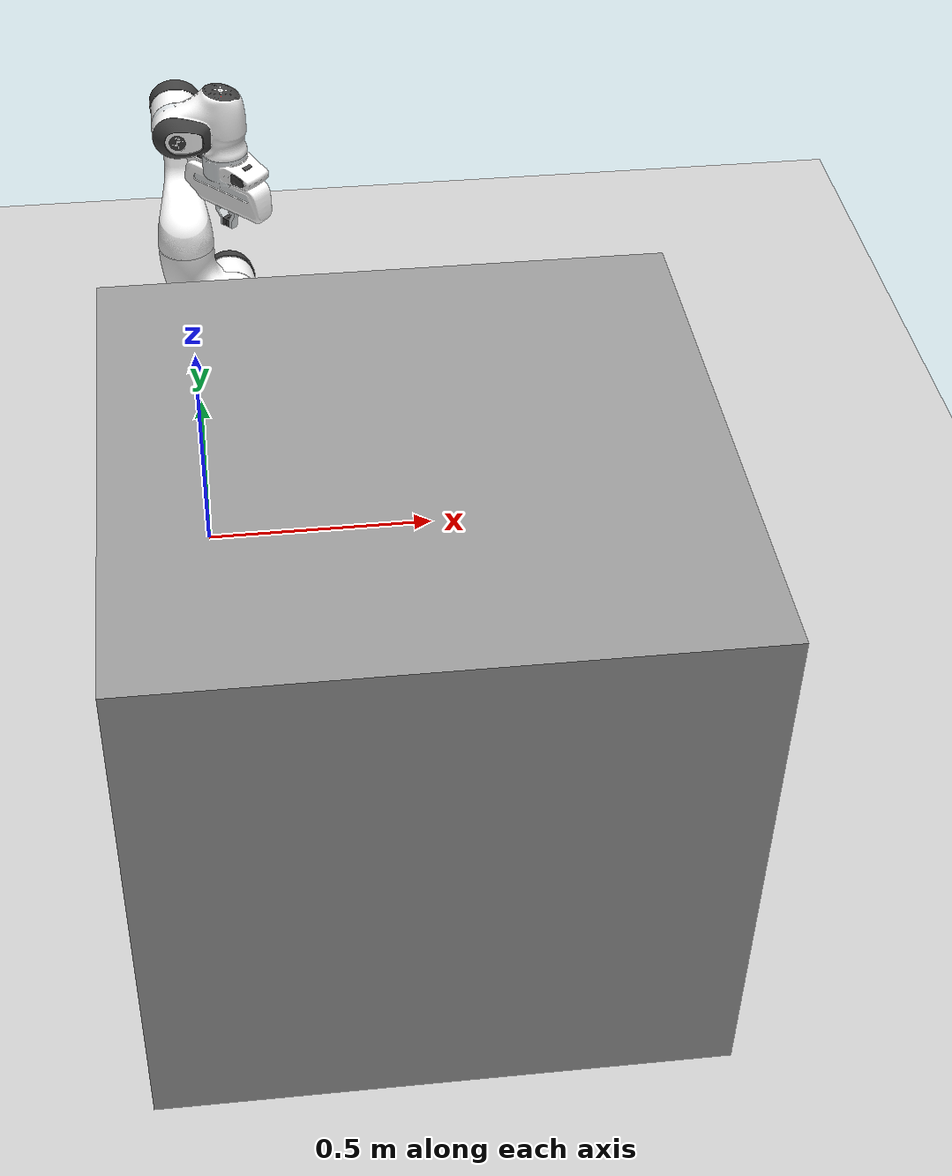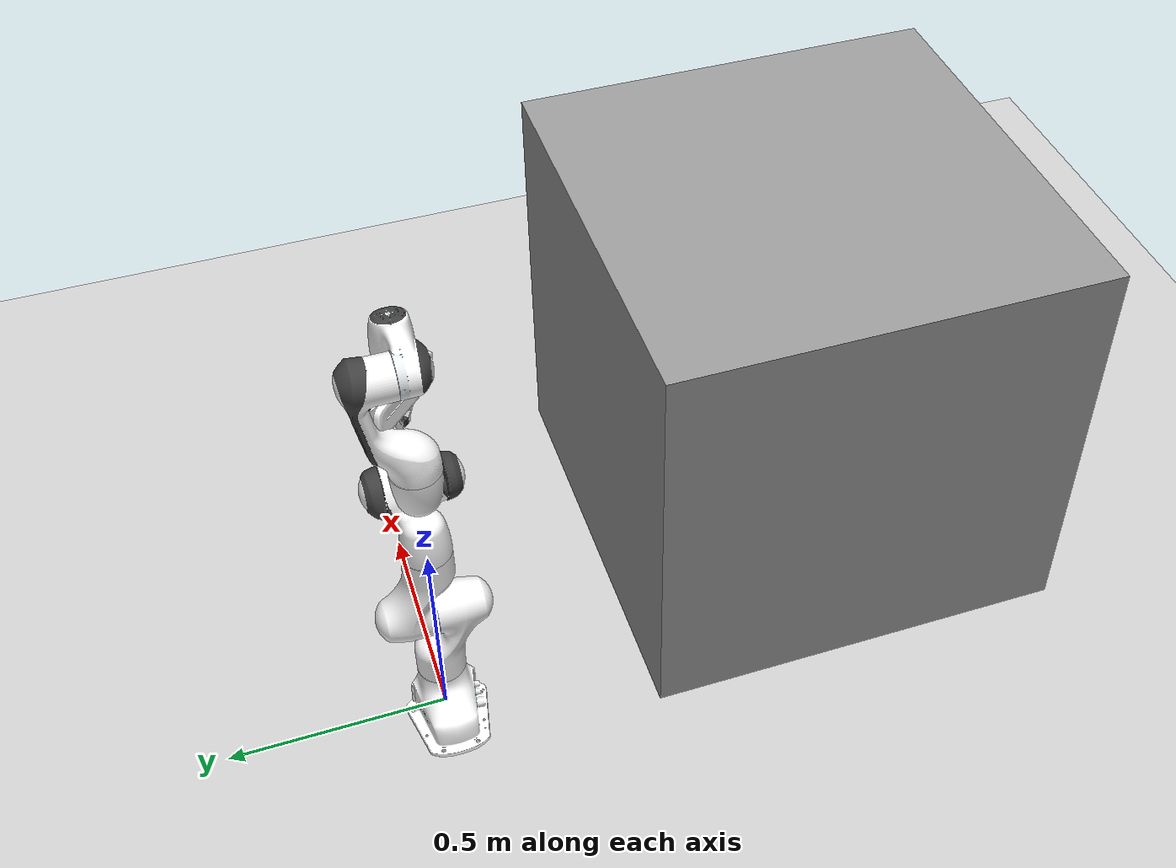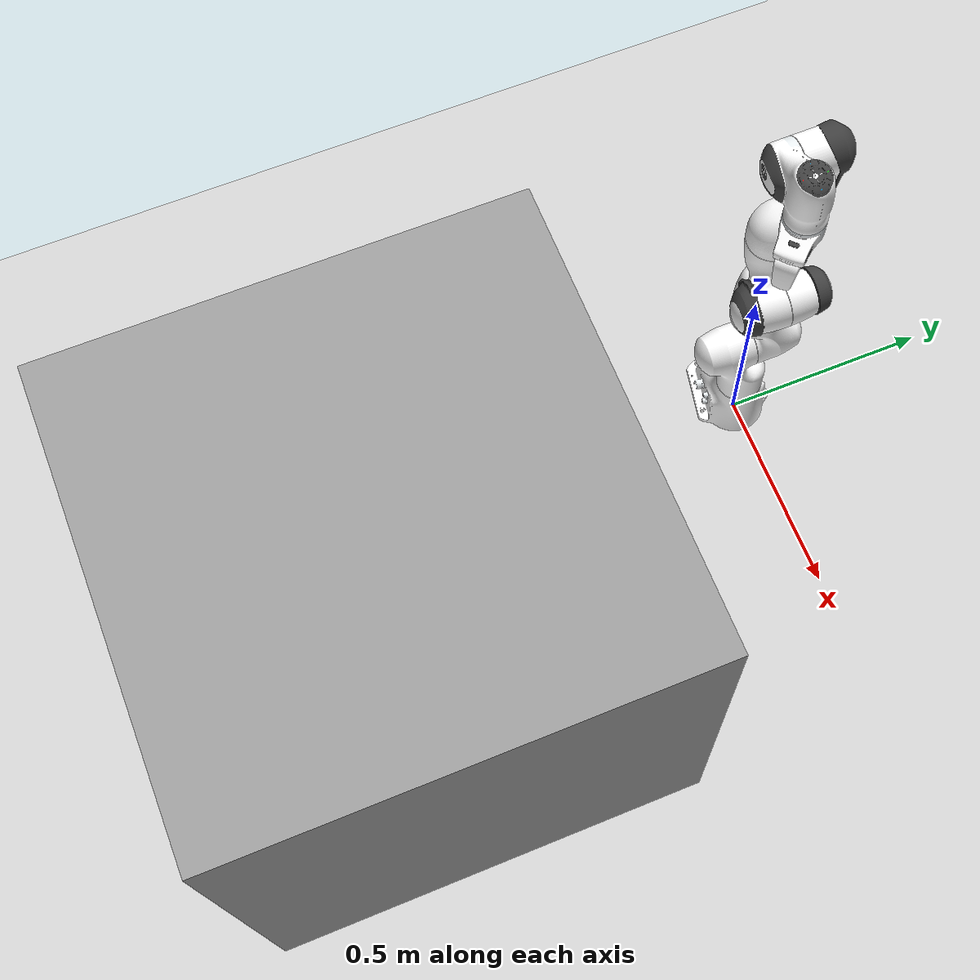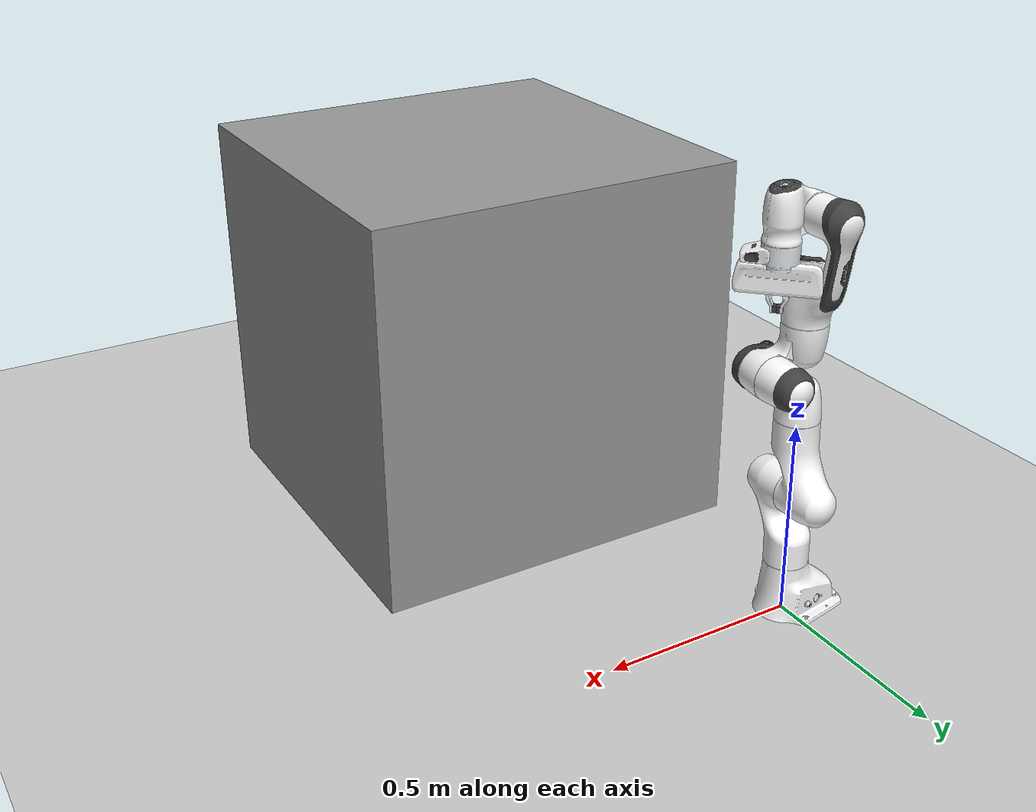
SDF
<sdf version="1.6">
 <world name="default">
  <light name="sun" type="directional">
   <pose>0 0 10 0 -0 0</pose>
   <diffuse>0.8 0.8 0.8 1</diffuse>
   <specular>0.2 0.2 0.2 1</specular>
   <attenuation>
    <range>1000</range>
    <constant>0.9</constant>
    <linear>0.01</linear>
    <quadratic>0.001</quadratic>
   </attenuation>
   <direction>-0.5 0.1 -0.9</direction>
  </light>
  <model name="ground_plane">
   <static>1</static>
   <link name="link">
    <collision name="collision">
     <geometry><plane><normal>0 0 1</normal><size>100 100</size></plane></geometry>
     <surface>
      <contact><collide_bitmask>65535</collide_bitmask></contact>
      <friction><ode><mu>100</mu><mu2>50</mu2></ode></friction>
     </surface>
    </collision>
    <visual name="visual">
     <cast_shadows>0</cast_shadows>
     <geometry><plane><normal>0 0 1</normal><size>100 100</size></plane></geometry>
     <material>
      <script><uri>file://media/materials/scripts/gazebo.material</uri><name>Gazebo/Grey</name></script>
     </material>
    </visual>
   </link>
  </model>
  <gravity>0 0 -9.8</gravity>
  <magnetic_field>6e-06 2.3e-05 -4.2e-05</magnetic_field>
  <atmosphere type="adiabatic"/>
  <physics name="default_physics" default="0" type="ode">
   <max_step_size>0.001</max_step_size>
   <real_time_factor>1</real_time_factor>
   <real_time_update_rate>1000</real_time_update_rate>
  </physics>
  <scene><ambient>0.4 0.4 0.4 1</ambient><background>0.7 0.7 0.7 1</background><shadows>1</shadows></scene>
  <audio><device>default</device></audio>
  <spherical_coordinates>
   <surface_model>EARTH_WGS84</surface_model>
   <latitude_deg>0</latitude_deg>
   <longitude_deg>0</longitude_deg>
   <elevation>0</elevation>
   <heading_deg>0</heading_deg>
  </spherical_coordinates>
  <model name="panda">
   <link name="panda_link0">
    <inertial>
     <pose>-0.025566 -2.9e-05 0.057332 0 -0 0</pose>
     <mass>2.92</mass>
     <inertia>
      <ixx>0.00782229</ixx>
      <ixy>-1.56192e-05</ixy>
      <ixz>-0.00126006</ixz>
      <iyy>0.0109028</iyy>
      <iyz>1.08234e-05</iyz>
      <izz>0.0102356</izz>
     </inertia>
    </inertial>
    <collision name="panda_link0_collision">
     <geometry>
      <mesh><scale>1 1 1</scale><uri>/home/karlo/franka/src/franka_gazebo/meshes/collision/link0.stl</uri></mesh>
     </geometry>
    </collision>
    <visual name="panda_link0_visual">
     <geometry>
      <mesh><scale>1 1 1</scale><uri>/home/karlo/franka/src/franka_gazebo/meshes/visual/link0.dae</uri></mesh>
     </geometry>
    </visual>
   </link>
   <joint name="panda_joint_world" type="fixed"><child>panda_link0</child><parent>world</parent></joint>
   <link name="panda_link1">
    <pose>0 0 0.333 0 -0 0</pose>
    <inertial>
     <pose>0 -0.032496 -0.067582 0 -0 0</pose>
     <mass>2.74</mass>
     <inertia>
      <ixx>0.0180417</ixx>
      <ixy>0</ixy>
      <ixz>0</ixz>
      <iyy>0.0159136</iyy>
      <iyz>0.00467584</iyz>
      <izz>0.00620691</izz>
     </inertia>
    </inertial>
    <collision name="panda_link1_collision">
     <geometry>
      <mesh><scale>1 1 1</scale><uri>/home/karlo/franka/src/franka_gazebo/meshes/collision/link1.stl</uri></mesh>
     </geometry>
    </collision>
    <visual name="panda_link1_visual">
     <geometry>
      <mesh><scale>1 1 1</scale><uri>/home/karlo/franka/src/franka_gazebo/meshes/visual/link1.dae</uri></mesh>
     </geometry>
    </visual>
   </link>
   <joint name="panda_joint1" type="revolute">
    <child>panda_link1</child>
    <parent>panda_link0</parent>
    <axis>
     <xyz>0 0 1</xyz>
     <limit><lower>-2.8973</lower><upper>2.8973</upper><effort>87</effort><velocity>2.175</velocity></limit>
     <dynamics><spring_reference>0</spring_reference><spring_stiffness>0</spring_stiffness></dynamics>
     <use_parent_model_frame>1</use_parent_model_frame>
    </axis>
   </joint>
   <link name="panda_link2">
    <pose>0 0 0.333 -1.5708 0 0</pose>
    <inertial>
     <pose>0 -0.06861 0.032229 0 -0 0</pose>
     <mass>2.74</mass>
     <inertia>
      <ixx>0.0182856</ixx>
      <ixy>0</ixy>
      <ixz>0</ixz>
      <iyy>0.00621358</iyy>
      <iyz>-0.00472844</iyz>
      <izz>0.0161514</izz>
     </inertia>
    </inertial>
    <collision name="panda_link2_collision">
     <geometry>
      <mesh><scale>1 1 1</scale><uri>/home/karlo/franka/src/franka_gazebo/meshes/collision/link2.stl</uri></mesh>
     </geometry>
    </collision>
    <visual name="panda_link2_visual">
     <geometry>
      <mesh><scale>1 1 1</scale><uri>/home/karlo/franka/src/franka_gazebo/meshes/visual/link2.dae</uri></mesh>
     </geometry>
    </visual>
   </link>
   <joint name="panda_joint2" type="revolute">
    <child>panda_link2</child>
    <parent>panda_link1</parent>
    <axis>
     <xyz>0 1 0</xyz>
     <limit><lower>-1.7628</lower><upper>1.7628</upper><effort>87</effort><velocity>2.175</velocity></limit>
     <dynamics><spring_reference>0</spring_reference><spring_stiffness>0</spring_stiffness></dynamics>
     <use_parent_model_frame>1</use_parent_model_frame>
    </axis>
   </joint>
   <link name="panda_link3">
    <pose>0 -0 0.649 0 -0 0</pose>
    <inertial>
     <pose>0.046989 0.031637 -0.031704 0 -0 0</pose>
     <mass>2.38</mass>
     <inertia>
      <ixx>0.00771377</ixx>
      <ixy>-0.00248491</ixy>
      <ixz>-0.00332148</ixz>
      <iyy>0.00989108</iyy>
      <iyz>-0.00217796</iyz>
      <izz>0.00811724</izz>
     </inertia>
    </inertial>
    <collision name="panda_link3_collision">
     <geometry>
      <mesh><scale>1 1 1</scale><uri>/home/karlo/franka/src/franka_gazebo/meshes/collision/link3.stl</uri></mesh>
     </geometry>
    </collision>
    <visual name="panda_link3_visual">
     <geometry>
      <mesh><scale>1 1 1</scale><uri>/home/karlo/franka/src/franka_gazebo/meshes/visual/link3.dae</uri></mesh>
     </geometry>
    </visual>
   </link>
   <joint name="panda_joint3" type="revolute">
    <child>panda_link3</child>
    <parent>panda_link2</parent>
    <axis>
     <xyz>0 0 1</xyz>
     <limit><lower>-2.8973</lower><upper>2.8973</upper><effort>87</effort><velocity>2.175</velocity></limit>
     <dynamics><spring_reference>0</spring_reference><spring_stiffness>0</spring_stiffness></dynamics>
     <use_parent_model_frame>1</use_parent_model_frame>
    </axis>
   </joint>
   <link name="panda_link4">
    <pose>0.0825 -0 0.649 1.5708 -0 0</pose>
    <inertial>
     <pose>-0.036045 0.033685 0.031882 0 -0 0</pose>
     <mass>2.38</mass>
     <inertia>
      <ixx>0.00799664</ixx>
      <ixy>0.00347096</ixy>
      <ixz>-0.00241223</ixz>
      <iyy>0.00825391</iyy>
      <iyz>0.00235774</iyz>
      <izz>0.0102515</izz>
     </inertia>
    </inertial>
    <collision name="panda_link4_collision">
     <geometry>
      <mesh><scale>1 1 1</scale><uri>/home/karlo/franka/src/franka_gazebo/meshes/collision/link4.stl</uri></mesh>
     </geometry>
    </collision>
    <visual name="panda_link4_visual">
     <geometry>
      <mesh><scale>1 1 1</scale><uri>/home/karlo/franka/src/franka_gazebo/meshes/visual/link4.dae</uri></mesh>
     </geometry>
    </visual>
   </link>
   <joint name="panda_joint4" type="revolute">
    <child>panda_link4</child>
    <parent>panda_link3</parent>
    <axis>
     <xyz>0 -1 0</xyz>
     <limit><lower>-3.0718</lower><upper>0.0698</upper><effort>87</effort><velocity>2.175</velocity></limit>
     <dynamics><spring_reference>0</spring_reference><spring_stiffness>0</spring_stiffness></dynamics>
     <use_parent_model_frame>1</use_parent_model_frame>
    </axis>
   </joint>
   <link name="panda_link5">
    <pose>-0 0 1.033 0 -0 0</pose>
    <inertial>
     <pose>0 0.061043 -0.104176 0 -0 0</pose>
     <mass>2.74</mass>
     <inertia>
      <ixx>0.0303714</ixx>
      <ixy>6.50284e-07</ixy>
      <ixz>-1.05129e-05</ixz>
      <iyy>0.0288753</iyy>
      <iyz>-0.00775653</iyz>
      <izz>0.00444134</izz>
     </inertia>
    </inertial>
    <collision name="panda_link5_collision">
     <geometry>
      <mesh><scale>1 1 1</scale><uri>/home/karlo/franka/src/franka_gazebo/meshes/collision/link5.stl</uri></mesh>
     </geometry>
    </collision>
    <visual name="panda_link5_visual">
     <geometry>
      <mesh><scale>1 1 1</scale><uri>/home/karlo/franka/src/franka_gazebo/meshes/visual/link5.dae</uri></mesh>
     </geometry>
    </visual>
   </link>
   <joint name="panda_joint5" type="revolute">
    <child>panda_link5</child>
    <parent>panda_link4</parent>
    <axis>
     <xyz>0 0 1</xyz>
     <limit><lower>-2.8973</lower><upper>2.8973</upper><effort>12</effort><velocity>2.61</velocity></limit>
     <dynamics><spring_reference>0</spring_reference><spring_stiffness>0</spring_stiffness></dynamics>
     <use_parent_model_frame>1</use_parent_model_frame>
    </axis>
   </joint>
   <link name="panda_link6">
    <pose>-0 0 1.033 1.5708 -0 0</pose>
    <inertial>
     <pose>0.051051 0.009108 0.010634 0 -0 0</pose>
     <mass>1.55</mass>
     <inertia>
      <ixx>0.00303336</ixx>
      <ixy>-0.000437277</ixy>
      <ixz>0.000629257</ixz>
      <iyy>0.0040448</iyy>
      <iyz>0.000130472</iyz>
      <izz>0.00558234</izz>
     </inertia>
    </inertial>
    <collision name="panda_link6_collision">
     <geometry>
      <mesh><scale>1 1 1</scale><uri>/home/karlo/franka/src/franka_gazebo/meshes/collision/link6.stl</uri></mesh>
     </geometry>
    </collision>
    <visual name="panda_link6_visual">
     <geometry>
      <mesh><scale>1 1 1</scale><uri>/home/karlo/franka/src/franka_gazebo/meshes/visual/link6.dae</uri></mesh>
     </geometry>
    </visual>
   </link>
   <joint name="panda_joint6" type="revolute">
    <child>panda_link6</child>
    <parent>panda_link5</parent>
    <axis>
     <xyz>0 -1 0</xyz>
     <limit><lower>-0.0175</lower><upper>3.7525</upper><effort>12</effort><velocity>2.61</velocity></limit>
     <dynamics><spring_reference>0</spring_reference><spring_stiffness>0</spring_stiffness></dynamics>
     <use_parent_model_frame>1</use_parent_model_frame>
    </axis>
   </joint>
   <link name="panda_link7">
    <pose>0.088 0 1.033 3.14159 -0 0</pose>
    <inertial>
     <pose>0.005284 0.00521 0.105019 0 -0 0</pose>
     <mass>1.27</mass>
     <inertia>
      <ixx>0.00401245</ixx>
      <ixy>-0.00134501</ixy>
      <ixz>0.000253409</ixz>
      <iyy>0.00401263</iyy>
      <iyz>0.000116421</iyz>
      <izz>0.00334115</izz>
     </inertia>
    </inertial>
    <collision name="panda_link7_collision">
     <geometry>
      <mesh><scale>1 1 1</scale><uri>/home/karlo/franka/src/franka_gazebo/meshes/collision/link7.stl</uri></mesh>
     </geometry>
    </collision>
    <collision name="panda_link7_fixed_joint_lump__panda_hand_collision_1">
     <pose>0 0 0.107 0 0 -0.785398</pose>
     <geometry>
      <mesh><scale>1 1 1</scale><uri>/home/karlo/franka/src/franka_gazebo/meshes/collision/hand.stl</uri></mesh>
     </geometry>
    </collision>
    <visual name="panda_link7_visual">
     <geometry>
      <mesh><scale>1 1 1</scale><uri>/home/karlo/franka/src/franka_gazebo/meshes/visual/link7.dae</uri></mesh>
     </geometry>
    </visual>
    <visual name="panda_link7_fixed_joint_lump__panda_hand_visual_1">
     <pose>0 0 0.107 0 0 -0.785398</pose>
     <geometry>
      <mesh><scale>1 1 1</scale><uri>/home/karlo/franka/src/franka_gazebo/meshes/visual/hand.dae</uri></mesh>
     </geometry>
    </visual>
   </link>
   <joint name="panda_joint7" type="revolute">
    <child>panda_link7</child>
    <parent>panda_link6</parent>
    <axis>
     <xyz>0 -0 -1</xyz>
     <limit><lower>-2.8973</lower><upper>2.8973</upper><effort>12</effort><velocity>2.61</velocity></limit>
     <dynamics><spring_reference>0</spring_reference><spring_stiffness>0</spring_stiffness></dynamics>
     <use_parent_model_frame>1</use_parent_model_frame>
    </axis>
   </joint>
   <link name="panda_leftfinger">
    <pose>0.088 -0 0.8676 3.14159 -0 0.785398</pose>
    <inertial>
     <pose>0 0.014564 0.022794 0 -0 0</pose>
     <mass>0.1</mass>
     <inertia>
      <ixx>3.01221e-05</ixx>
      <ixy>0</ixy>
      <ixz>0</ixz>
      <iyy>2.95874e-05</iyy>
      <iyz>0</iyz>
      <izz>6.95125e-06</izz>
     </inertia>
    </inertial>
    <collision name="panda_leftfinger_collision">
     <geometry>
      <mesh><scale>1 1 1</scale><uri>/home/karlo/franka/src/franka_gazebo/meshes/collision/finger.stl</uri></mesh>
     </geometry>
    </collision>
    <visual name="panda_leftfinger_visual">
     <geometry>
      <mesh><scale>1 1 1</scale><uri>/home/karlo/franka/src/franka_gazebo/meshes/visual/finger.dae</uri></mesh>
     </geometry>
    </visual>
    <sensor name="contact_left" type="contact">
     <update_rate>1000.0</update_rate>
     <contact><collision>panda_leftfinger_collision</collision></contact>
     <plugin name="gazebo_ros_bumper_controller" filename="libgazebo_ros_bumper.so">
      <alwaysOn>true</alwaysOn>
      <updateRate>1000.0</updateRate>
      <bumperTopicName>/franka/robot_contact_left</bumperTopicName>
      <frameName>world</frameName>
     </plugin>
    </sensor>
   </link>
   <joint name="panda_finger_joint1" type="prismatic">
    <child>panda_leftfinger</child>
    <parent>panda_link7</parent>
    <axis>
     <xyz>0.707107 -0.707107 0</xyz>
     <limit><lower>-0.001</lower><upper>0.04</upper><effort>20</effort><velocity>0.3</velocity></limit>
     <dynamics><spring_reference>0</spring_reference><spring_stiffness>0</spring_stiffness></dynamics>
     <use_parent_model_frame>1</use_parent_model_frame>
    </axis>
   </joint>
   <link name="panda_rightfinger">
    <pose>0.088 -0 0.8676 3.14159 -0 0.785398</pose>
    <inertial>
     <pose>0 0.014564 0.022794 0 -0 -3.14159</pose>
     <mass>0.1</mass>
     <inertia>
      <ixx>3.01221e-05</ixx>
      <ixy>0</ixy>
      <ixz>0</ixz>
      <iyy>2.95874e-05</iyy>
      <iyz>0</iyz>
      <izz>6.95125e-06</izz>
     </inertia>
    </inertial>
    <collision name="panda_rightfinger_collision">
     <pose>0 0 0 0 -0 -3.14159</pose>
     <geometry>
      <mesh><scale>1 1 1</scale><uri>/home/karlo/franka/src/franka_gazebo/meshes/collision/finger.stl</uri></mesh>
     </geometry>
    </collision>
    <visual name="panda_rightfinger_visual">
     <pose>0 0 0 0 -0 -3.14159</pose>
     <geometry>
      <mesh><scale>1 1 1</scale><uri>/home/karlo/franka/src/franka_gazebo/meshes/visual/finger.dae</uri></mesh>
     </geometry>
    </visual>
    <sensor name="contact_right" type="contact">
     <update_rate>1000.0</update_rate>
     <contact><collision>panda_rightfinger_collision</collision></contact>
     <plugin name="gazebo_ros_bumper_controller" filename="libgazebo_ros_bumper.so">
      <alwaysOn>true</alwaysOn>
      <updateRate>1000.0</updateRate>
      <bumperTopicName>/franka/robot_contact_right</bumperTopicName>
      <frameName>world</frameName>
     </plugin>
    </sensor>
   </link>
   <joint name="panda_finger_joint2" type="prismatic">
    <child>panda_rightfinger</child>
    <parent>panda_link7</parent>
    <axis>
     <xyz>-0.707107 0.707107 -0</xyz>
     <limit><lower>-0.001</lower><upper>0.04</upper><effort>20</effort><velocity>0.3</velocity></limit>
     <dynamics><spring_reference>0</spring_reference><spring_stiffness>0</spring_stiffness></dynamics>
     <use_parent_model_frame>1</use_parent_model_frame>
    </axis>
   </joint>
   <static>0</static>
   <plugin name="gazebo_ros_control" filename="libgazebo_ros_control.so">
    <robotNamespace>/</robotNamespace>
   </plugin>
  </model>
  <model name="unit_box">
   <pose>0.34473 -0.968528 0.5 0 -0 0</pose>
   <static>1</static>
   <link name="link">
    <inertial>
     <mass>1</mass>
     <inertia>
      <ixx>0.166667</ixx>
      <ixy>0</ixy>
      <ixz>0</ixz>
      <iyy>0.166667</iyy>
      <iyz>0</iyz>
      <izz>0.166667</izz>
     </inertia>
    </inertial>
    <collision name="collision"><geometry><box><size>1 1 0.999998</size></box></geometry></collision>
    <visual name="visual">
     <geometry><box><size>1 1 0.999998</size></box></geometry>
     <material>
      <script><name>Gazebo/Grey</name><uri>file://media/materials/scripts/gazebo.material</uri></script>
     </material>
    </visual>
   </link>
  </model>
 </world>
</sdf>
